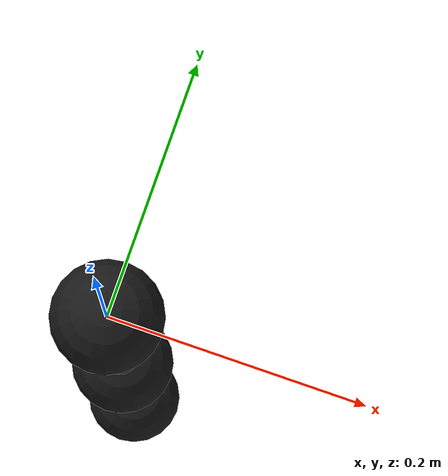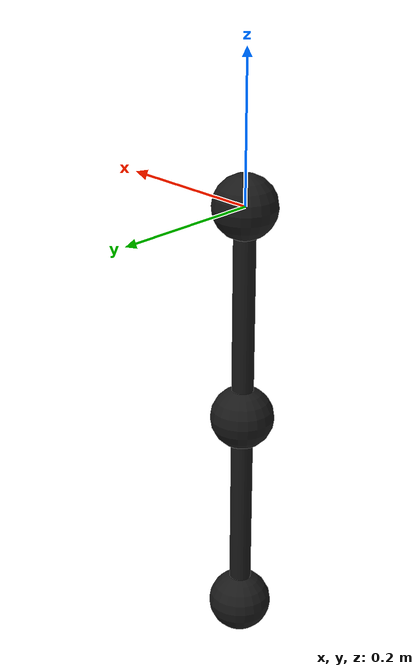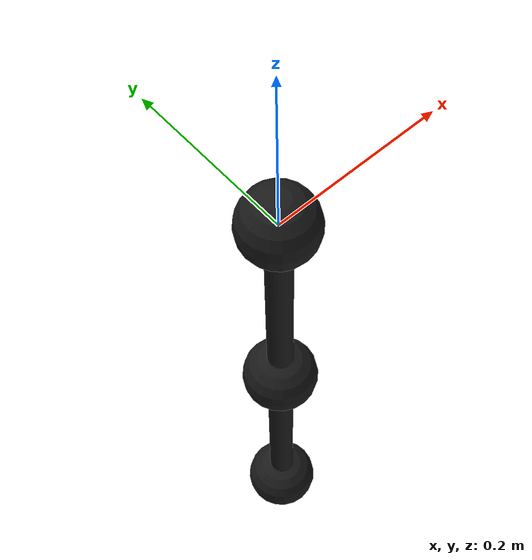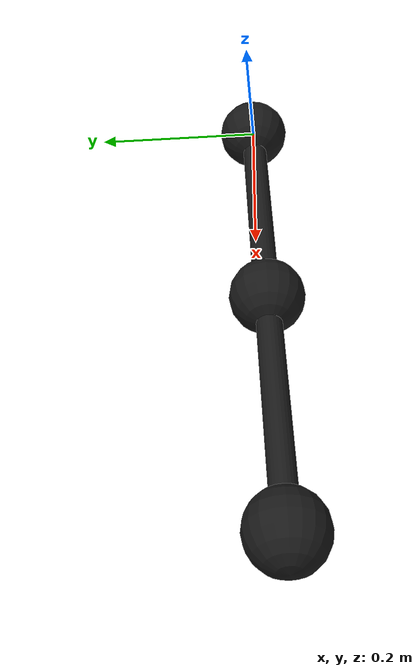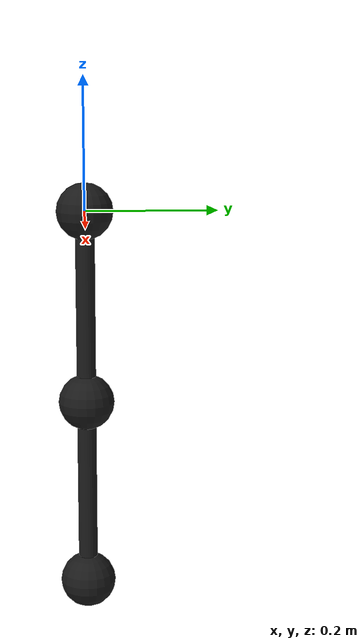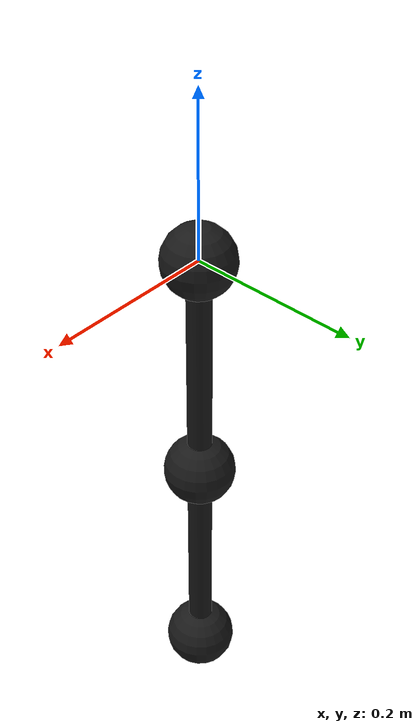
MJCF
<mujoco model="3D_UpperLimb">

  <compiler inertiafromgeom = "auto"
            angle 					= "radian" />

						<option  timestep  = '0.0001'
										iterations = '50'
										integrator = 'Euler'
										   gravity = "0 0 -9.81"
									   collision = 'all' >

							<flag energy = 'enable'/>

						</option>

  <asset>
    <!-- Texture of the surrounding sky box
         setting everything as white-ish color for better visualization -->
			<texture type="skybox" builtin="checker" rgb1="1 1 1" rgb2="1 1 1" width="200" height="200"  />

     <!-- Joint and Limb Color -->
		 <material name="JointColor" 		 rgba="0.1 0.1 0.1 1" />
		 <material name="LimbColor" 		 rgba="0.1 0.1 0.1 1" />
		 <material name="pointMassColor" rgba="0.75 0.0 0.75 1" />
		 <material name="RefMassColor" 	 rgba="0.2 0.9 0.1 1.0" />

  </asset>

	<visual>
		<global glow="1.0" fovy="45" ipd="0.0"/>
		<headlight specular="0.0 0.0 0.0" diffuse="1.0 1.0 1.0"/>
	</visual>

  <worldbody>

    <body name='cameramover' mocap='true' pos='0 0 0'>
				<camera name='mycamera' pos='0.0 2.0 2.0' euler='1.5707 0 0'/>
  	</body>

    <!-- ============ UPPER ARM START =============== -->
		<body name='upperArm' pos='0 0 0' euler='0 0 0'>
			<inertial pos='0 0 -0.129'     mass='1.595'         diaginertia='0.011917 0.011937 0.001325'/>
			<geom name="shoulderGEOM" type="sphere" pos="0 0 0" material="JointColor" size="0.0430" mass="0" />
			<joint name="shoulderFlexExt" ref="0" type="hinge" stiffness="0" pos="0 0 0" axis = "0 -1 0" />
			<joint name='shoulderAddAbd' ref='0'  type='hinge' stiffness='0' pos='0 0 0' axis='-1 0 0' />
			<joint name='shoulderMedLat' ref='0'  type='hinge' stiffness='0' pos='0 0 0' axis=' 0 0 1' />
			<site name="upperArmCOM" pos="0 0 -0.129" />
			<geom type="cylinder" fromto="0 0 0 0 0 -0.294" material="LimbColor" mass="0" size="0.0147" />
			<body name="foreArm" pos="0 0 -0.294" euler="0 0 0">
				<inertial pos="0 0 -0.112" mass="0.869" diaginertia="0.004765 0.004855 0.000472" />
				 <geom name="elbowGEOM" type="sphere" pos="0 0 0" material="JointColor" size="0.0430" mass="0" />
				 <joint name="elbow" ref="0" type="hinge" stiffness="0" pos="0 0 0" axis="0 -1 0" />
				 <geom type="cylinder" fromto="0 0 0 0 0 -0.291" material="LimbColor" mass="0" size="0.0147" />
				 <site name="foreArmCOM" pos="0 0 -0.112" />
				 <geom name="geom_EE" type="sphere" pos="0 0 -0.291" material="JointColor" size="0.0430" mass="0" />

			</body>
			<!-- ============ FORE ARM END   =============== -->

	</body>
  </worldbody>

	<actuator>

		<motor joint = 'shoulderFlexExt' name = 'shoulderFlexExtTorqueMotor' forcelimited = 'false'/>
		<motor joint = 'shoulderAddAbd'  name = 'shoulderAddAbdTorqueMotor'  forcelimited = 'false'/>
		<motor joint = 'shoulderMedLat'  name = 'shoulderMedLatTorqueMotor'  forcelimited = 'false'/>
    <motor joint = 'elbow'           name = 'elbowTorqueMotor'           forcelimited = 'false'/>

  </actuator>

</mujoco>
